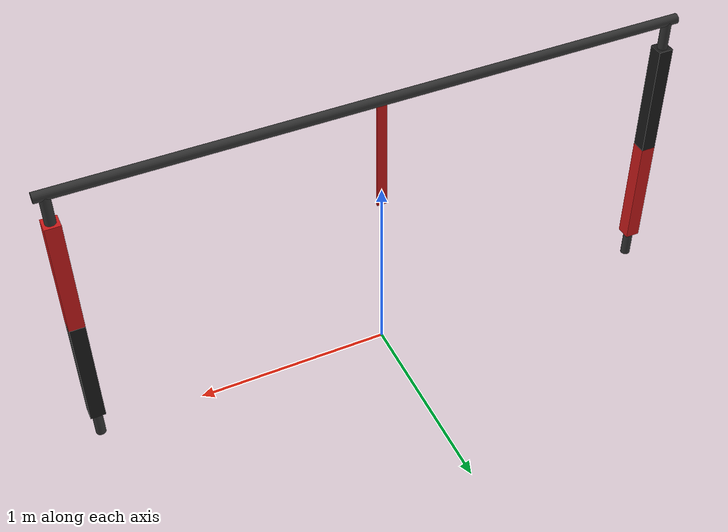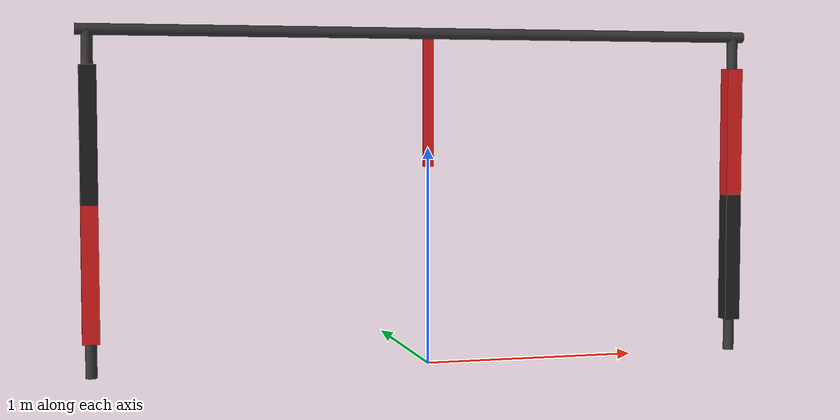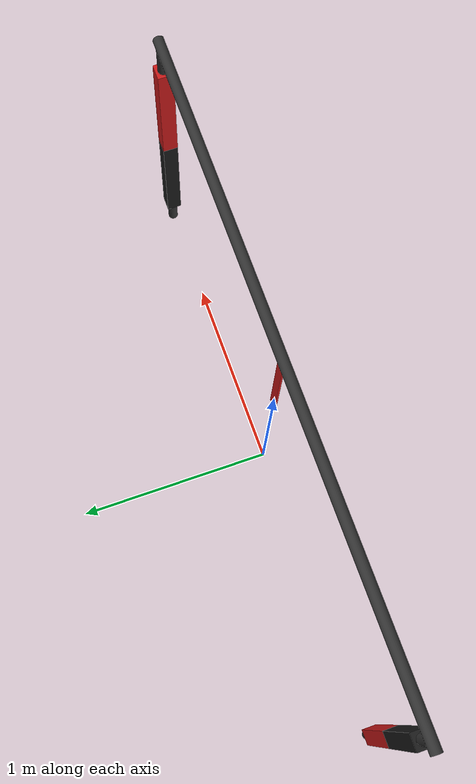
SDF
<?xml version="1.0" ?>
<sdf version="1.10">
    <model name="Gate">
        <static>true</static>
        <cast_shadows>false</cast_shadows>
        <link name="gate_frame">

            <visual name="left_leg_pvc">
                <pose>-1.524 0 0.762 0 0 0</pose>
                <geometry><cylinder><radius>0.0254</radius><length>1.524</length></cylinder></geometry>
                <material><diffuse>0.2 0.2 0.2 1</diffuse><pbr><metal><albedo>0.2 0.2 0.2 1</albedo></metal></pbr></material>
            </visual>

            <visual name="right_leg_pvc">
                <pose>1.524 0 0.762 0 0 0</pose>
                <geometry><cylinder><radius>0.0254</radius><length>1.524</length></cylinder></geometry>
                <material><diffuse>0.2 0.2 0.2 1</diffuse><pbr><metal><albedo>0.2 0.2 0.2 1</albedo></metal></pbr></material>
            </visual>

            <visual name="top_bar_pvc">
                <pose>0 0 1.524 0 1.5708 0</pose>
                <geometry><cylinder><radius>0.0254</radius><length>3.15</length></cylinder></geometry>
                <material><diffuse>0.2 0.2 0.2 1</diffuse><pbr><metal><albedo>0.2 0.2 0.2 1</albedo></metal></pbr></material>
            </visual>

            <visual name="left_leg_top_black">
                <pose>-1.524 0 1.0668 0 0 0</pose>
                <geometry><box><size>0.0762 0.0762 0.6096</size></box></geometry>
                <material><diffuse>0.1 0.1 0.1 1</diffuse><pbr><metal><albedo>0.1 0.1 0.1 1</albedo><roughness>0.8</roughness></metal></pbr></material>
            </visual>

            <visual name="left_leg_bottom_red">
                <pose>-1.524 0 0.4572 0 0 0</pose>
                <geometry><box><size>0.0762 0.0762 0.6096</size></box></geometry>
                <material><diffuse>0.8 0.1 0.1 1</diffuse><pbr><metal><albedo>0.8 0.1 0.1 1</albedo><roughness>0.8</roughness></metal></pbr></material>
            </visual>

            <collision name="left_leg_col">
                <pose>-1.524 0 0.762 0 0 0</pose>
                <geometry><box><size>0.0762 0.0762 1.524</size></box></geometry>
            </collision>

            <visual name="right_leg_top_red">
                <pose>1.524 0 1.0668 0 0 0</pose>
                <geometry><box><size>0.0762 0.0762 0.6096</size></box></geometry>
                <material><diffuse>0.8 0.1 0.1 1</diffuse><pbr><metal><albedo>0.8 0.1 0.1 1</albedo><roughness>0.8</roughness></metal></pbr></material>
            </visual>

            <visual name="right_leg_bottom_black">
                <pose>1.524 0 0.4572 0 0 0</pose>
                <geometry><box><size>0.0762 0.0762 0.6096</size></box></geometry>
                <material><diffuse>0.1 0.1 0.1 1</diffuse><pbr><metal><albedo>0.1 0.1 0.1 1</albedo><roughness>0.8</roughness></metal></pbr></material>
            </visual>

            <collision name="right_leg_col">
                <pose>1.524 0 0.762 0 0 0</pose>
                <geometry><box><size>0.0762 0.0762 1.524</size></box></geometry>
            </collision>

            <visual name="center_divider_red">
                <pose>0 0 1.2192 0 0 0</pose>
                <geometry><box><size>0.0508 0.01 0.6096</size></box></geometry>
                <material><diffuse>0.8 0.1 0.1 1</diffuse><pbr><metal><albedo>0.8 0.1 0.1 1</albedo><roughness>0.8</roughness></metal></pbr></material>
            </visual>

            <collision name="center_divider_col">
                <pose>0 0 1.2192 0 0 0</pose>
                <geometry><box><size>0.0508 0.01 0.6096</size></box></geometry>
            </collision>

            <collision name="top_bar_col">
                <pose>0 0 1.524 0 1.5708 0</pose>
                <geometry><cylinder><radius>0.0254</radius><length>3.15</length></cylinder></geometry>
            </collision>

        </link>
    </model>
</sdf>
